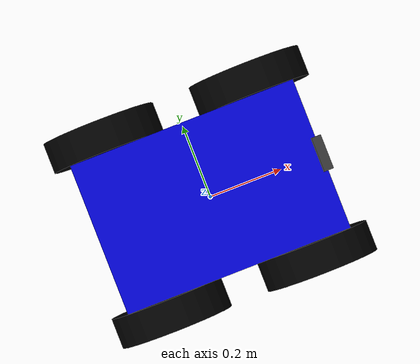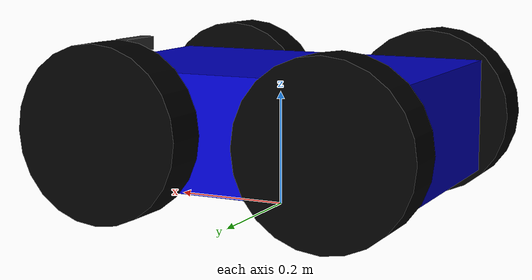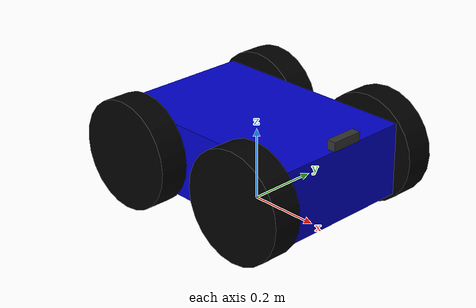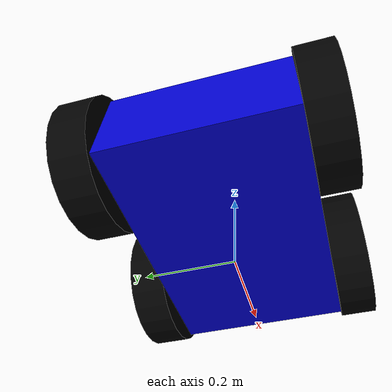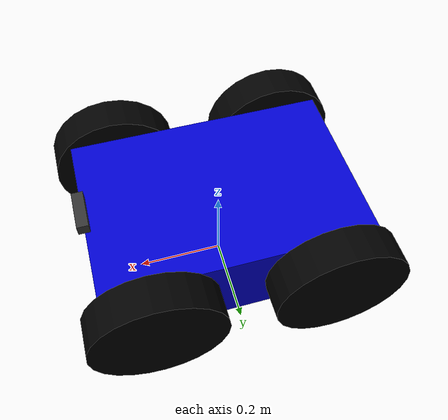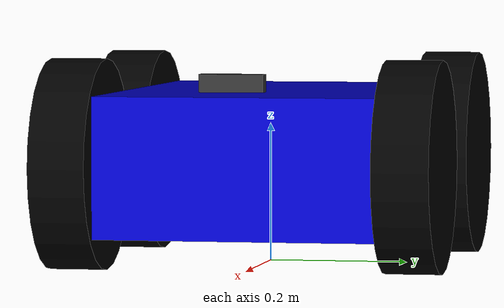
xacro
<?xml version="1.0" ?>
<robot name="rover" xmlns:xacro="http://www.ros.org/wiki/xacro">

  <xacro:property name="chassis_mass" value="10.0"/>
  <xacro:property name="wheel_mass" value="1.5"/>

  <link name="base_footprint"/>

  <joint name="base_joint" type="fixed">
    <parent link="base_footprint"/>
    <child link="base_link"/>
    <origin xyz="0 0 0.15" rpy="0 0 0"/>
  </joint>

  <link name="base_link">
    <visual>
      <geometry><box size="0.6 0.4 0.2"/></geometry>
      <material name="blue"><color rgba="0 0 0.8 1"/></material>
    </visual>
    <collision>
      <geometry><box size="0.6 0.4 0.2"/></geometry>
    </collision>
    <inertial>
      <mass value="${chassis_mass}"/>
      <inertia ixx="0.166" ixy="0" ixz="0" iyy="0.333" iyz="0" izz="0.433"/>
    </inertial>
  </link>

  <xacro:macro name="wheel" params="prefix x_reflect y_reflect">
    <link name="${prefix}_wheel">
      <visual>
        <geometry><cylinder radius="0.15" length="0.08"/></geometry>
        <material name="black"><color rgba="0 0 0 1"/></material>
      </visual>
      <collision>
        <geometry><cylinder radius="0.15" length="0.08"/></geometry>
      </collision>
      <inertial>
        <mass value="${wheel_mass}"/>
        <inertia ixx="0.01" ixy="0" ixz="0" iyy="0.01" iyz="0" izz="0.017"/>
      </inertial>
    </link>

    <joint name="${prefix}_wheel_joint" type="continuous">
      <parent link="base_link"/>
      <child link="${prefix}_wheel"/>
      <origin xyz="${x_reflect * 0.2} ${y_reflect * 0.24} 0" rpy="-1.5708 0 0"/>
      <axis xyz="0 0 1"/>
    </joint>
  </xacro:macro>

  <xacro:wheel prefix="front_left" x_reflect="1" y_reflect="1" />
  <xacro:wheel prefix="front_right" x_reflect="1" y_reflect="-1" />
  <xacro:wheel prefix="rear_left" x_reflect="-1" y_reflect="1" />
  <xacro:wheel prefix="rear_right" x_reflect="-1" y_reflect="-1" />

  <gazebo>
    <plugin name="skid_steer_drive" filename="libgazebo_ros_diff_drive.so">
      <ros>
        <namespace>/</namespace>
        <remapping>cmd_vel:=cmd_vel</remapping>
        <remapping>odom:=odom</remapping>
      </ros>
      <update_rate>50.0</update_rate>

      <num_wheel_pairs>2</num_wheel_pairs>

      <left_joint>front_left_wheel_joint</left_joint>
      <right_joint>front_right_wheel_joint</right_joint>
      <left_joint>rear_left_wheel_joint</left_joint>
      <right_joint>rear_right_wheel_joint</right_joint>

      <wheel_separation>0.48</wheel_separation>
      <wheel_diameter>0.30</wheel_diameter>
      <max_wheel_torque>50</max_wheel_torque>
      <max_wheel_acceleration>1.0</max_wheel_acceleration>

      <publish_odom>true</publish_odom>
      <publish_odom_tf>true</publish_odom_tf>
      <publish_wheel_tf>true</publish_wheel_tf>
      <odometry_frame>odom</odometry_frame>
      <robot_base_frame>base_footprint</robot_base_frame>
    </plugin>
  </gazebo>

  <link name="lidar_link"/>
  <joint name="lidar_joint" type="fixed">
    <parent link="base_link"/>
    <child link="lidar_link"/>
    <origin xyz="0 0 0.12" rpy="0 0 0"/>
  </joint>
  <gazebo reference="lidar_link">
    <sensor type="ray" name="lidar">
      <pose>0 0 0 0 0 0</pose>
      <visualize>true</visualize>
      <update_rate>10</update_rate>
      <ray>
        <scan>
          <horizontal>
            <samples>360</samples>
            <resolution>1</resolution>
            <min_angle>-3.14159</min_angle>
            <max_angle>3.14159</max_angle>
          </horizontal>
        </scan>
        <range>
          <min>0.3</min>
          <max>12.0</max>
        </range>
      </ray>
      <plugin name="gazebo_ros_lidar" filename="libgazebo_ros_ray_sensor.so">
        <ros><remapping>~/out:=scan</remapping></ros>
        <output_type>sensor_msgs/LaserScan</output_type>
        <frame_name>lidar_link</frame_name>
      </plugin>
    </sensor>
  </gazebo>

  <link name="imu_link"/>
  <joint name="imu_joint" type="fixed">
    <parent link="base_link"/>
    <child link="imu_link"/>
    <origin xyz="0 0 0" rpy="0 0 0"/>
  </joint>
  <gazebo reference="imu_link">
    <sensor name="imu_sensor" type="imu">
      <plugin name="gazebo_ros_imu_sensor" filename="libgazebo_ros_imu_sensor.so">
        <ros><remapping>~/out:=imu</remapping></ros>
        <initial_orientation_as_reference>false</initial_orientation_as_reference>
      </plugin>
      <always_on>true</always_on>
      <update_rate>100</update_rate>
    </sensor>
  </gazebo>

  <link name="gps_link"/>
  <joint name="gps_joint" type="fixed">
    <parent link="base_link"/>
    <child link="gps_link"/>
    <origin xyz="-0.2 0 0.1" rpy="0 0 0"/>
  </joint>
  <gazebo reference="gps_link">
    <sensor name="gps_sensor" type="gps">
      <plugin name="gazebo_ros_gps_sensor" filename="libgazebo_ros_gps_sensor.so">
        <ros><remapping>~/out:=gps/fix</remapping></ros>
      </plugin>
      <always_on>true</always_on>
      <update_rate>10</update_rate>
    </sensor>
  </gazebo>

  <link name="camera_link"/>
  <joint name="camera_joint" type="fixed">
    <parent link="base_link"/>
    <child link="camera_link"/>
    <origin xyz="0.3 0 0.05" rpy="0 0 0"/>
  </joint>
  <gazebo reference="camera_link">
    <sensor type="camera" name="standard_camera">
      <update_rate>30.0</update_rate>
      <camera name="head">
        <horizontal_fov>1.3962634</horizontal_fov>
        <image><width>800</width><height>800</height><format>R8G8B8</format></image>
        <clip><near>0.02</near><far>300</far></clip>
      </camera>
      <plugin name="gazebo_ros_camera" filename="libgazebo_ros_camera.so">
        <ros><namespace>camera</namespace></ros>
        <camera_name>rgb</camera_name>
      </plugin>
    </sensor>
  </gazebo>

  <link name="zed2_link"/>
  <joint name="zed2_joint" type="fixed">
    <parent link="base_link"/>
    <child link="zed2_link"/>
    <origin xyz="0.25 0 0.15" rpy="0 0 0"/>
  </joint>
  <gazebo reference="zed2_link">
    <sensor type="multicamera" name="stereo_camera">
      <update_rate>30.0</update_rate>
      <camera name="left">
        <pose>0 0.06 0 0 0 0</pose>
        <horizontal_fov>1.9</horizontal_fov>
        <image><width>1280</width><height>720</height><format>R8G8B8</format></image>
        <clip><near>0.1</near><far>100</far></clip>
      </camera>
      <camera name="right">
        <pose>0 -0.06 0 0 0 0</pose>
        <horizontal_fov>1.9</horizontal_fov>
        <image><width>1280</width><height>720</height><format>R8G8B8</format></image>
        <clip><near>0.1</near><far>100</far></clip>
      </camera>
      <plugin name="stereo_camera_controller" filename="libgazebo_ros_camera.so">
        <ros><namespace>zed2</namespace></ros>
        <camera_name>stereo</camera_name>
      </plugin>
    </sensor>
  </gazebo>
  <!-- ───────── Intel RealSense D435 ───────── -->
  <link name="realsense_link">
    <visual>
      <geometry><box size="0.025 0.090 0.025"/></geometry>
      <material name="dark_grey"><color rgba="0.2 0.2 0.2 1.0"/></material>
    </visual>
    <collision>
      <geometry><box size="0.025 0.090 0.025"/></geometry>
    </collision>
    <inertial>
      <mass value="0.072"/>
      <inertia ixx="1e-4" ixy="0" ixz="0" iyy="1e-4" iyz="0" izz="1e-4"/>
    </inertial>
  </link>

  <joint name="realsense_joint" type="fixed">
    <parent link="base_link"/>
    <child link="realsense_link"/>
    <origin xyz="0.3 0 0.12" rpy="0 0 0"/>
  </joint>

  <!-- Optical frame: Z forward, X right, Y down (ROS convention) -->
  <link name="realsense_optical_frame"/>
  <joint name="realsense_optical_joint" type="fixed">
    <parent link="realsense_link"/>
    <child link="realsense_optical_frame"/>
    <origin xyz="0 0 0" rpy="-1.5708 0 -1.5708"/>
  </joint>

  <gazebo reference="realsense_link">
    <sensor name="realsense_d435" type="depth">
      <always_on>true</always_on>
      <visualize>true</visualize>
      <update_rate>30</update_rate>
      <camera>
        <horizontal_fov>1.5184</horizontal_fov>
        <image>
          <width>640</width>
          <height>480</height>
          <format>B8G8R8</format>
        </image>
        <clip><near>0.1</near><far>10.0</far></clip>
        <noise>
          <type>gaussian</type>
          <mean>0.0</mean>
          <stddev>0.005</stddev>
        </noise>
      </camera>
      <plugin name="realsense_plugin" filename="libgazebo_ros_camera.so">
        <ros>
          <namespace>/realsense</namespace>
          <remapping>image_raw:=color/image_raw</remapping>
          <remapping>camera_info:=color/camera_info</remapping>
          <remapping>depth/image_raw:=depth/image_rect_raw</remapping>
          <remapping>depth/camera_info:=depth/camera_info</remapping>
          <remapping>points:=depth/color/points</remapping>
        </ros>
        <camera_name>realsense_d435</camera_name>
        <frame_name>realsense_optical_frame</frame_name>
        <hack_baseline>0.07</hack_baseline>
        <min_depth>0.1</min_depth>
        <max_depth>10.0</max_depth>
      </plugin>
    </sensor>
  </gazebo>

  <gazebo reference="base_link">
    <material>Gazebo/Blue</material>
  </gazebo>

  <gazebo reference="front_left_wheel">
    <material>Gazebo/Black</material>
  </gazebo>

  <gazebo reference="front_right_wheel">
    <material>Gazebo/Black</material>
  </gazebo>

  <gazebo reference="rear_left_wheel">
    <material>Gazebo/Black</material>
  </gazebo>

  <gazebo reference="rear_right_wheel">
    <material>Gazebo/Black</material>
  </gazebo>
</robot>
